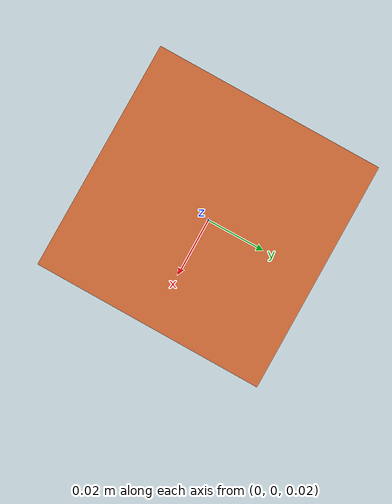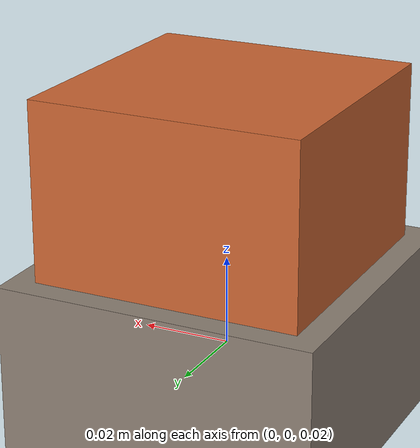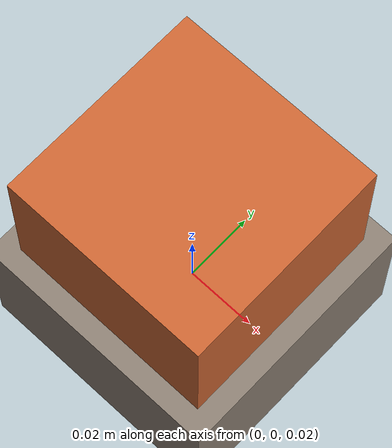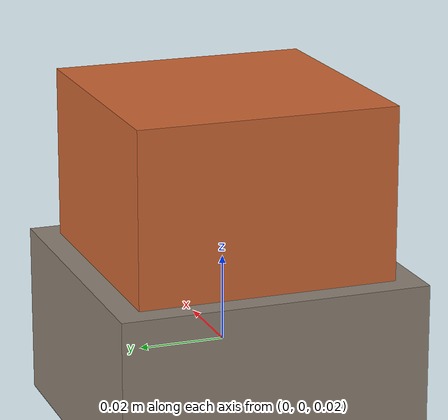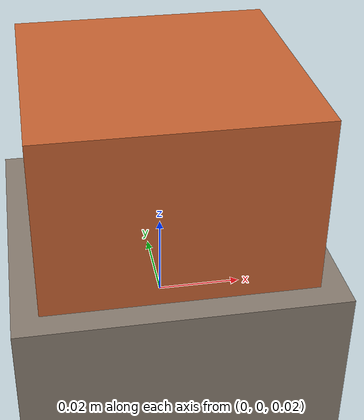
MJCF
<?xml version="1.0" encoding="utf-8"?>
<mujoco model="conveyor">
  <compiler angle="radian" autolimits="true"/>
  <option timestep="0.002" gravity="0 0 -9.81"/>
  <worldbody>
    <geom name="ground" type="plane" size="1 1 0.1" condim="3"/>
    <light name="main" pos="0.5 0.5 1.2" dir="0 0 -1" directional="true"/>
    <camera name="main" pos="0.800 0.600 0.500" fovy="60" mode="fixed"/>
    <body name="surface_conveyor" pos="0 0 0"><geom name="conveyor_geom" type="box" size="0.5 0.2 0.02" pos="0 0 0.02" rgba="0.55 0.5 0.45 1" condim="3"/></body>
    <body name="object_box" pos="0 0 0.05"><freejoint name="box_joint"/><geom name="box_geom" type="box" size="0.03 0.03 0.03" mass="0.1" rgba="0.8 0.4 0.2 1"/></body>
  </worldbody>
  <contact/>
</mujoco>
